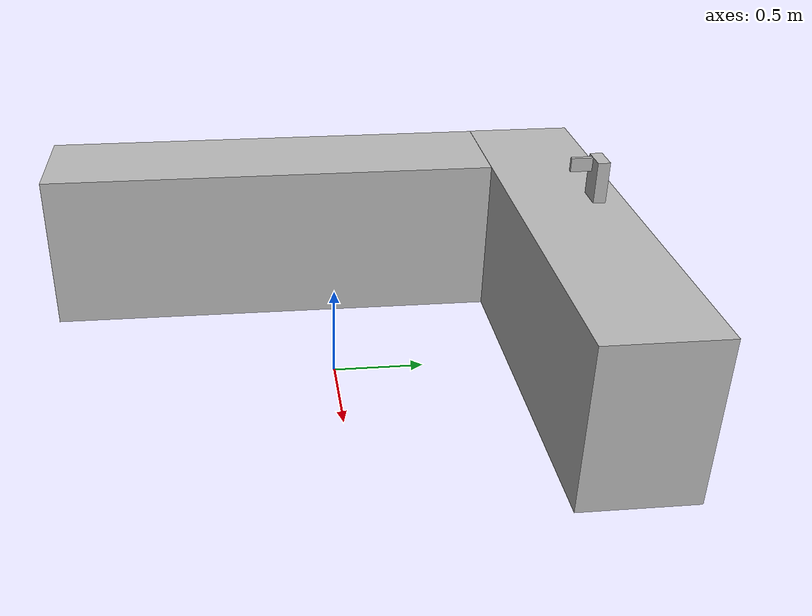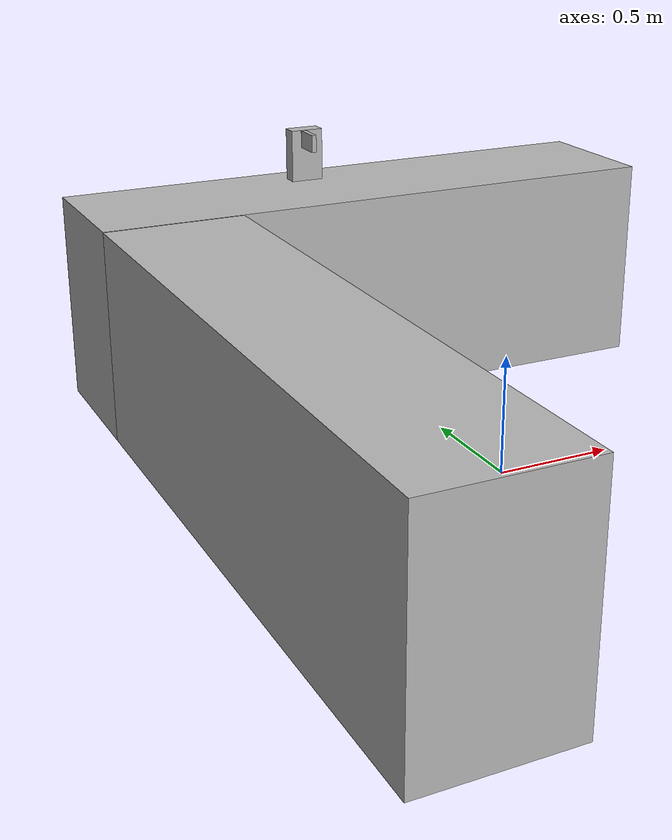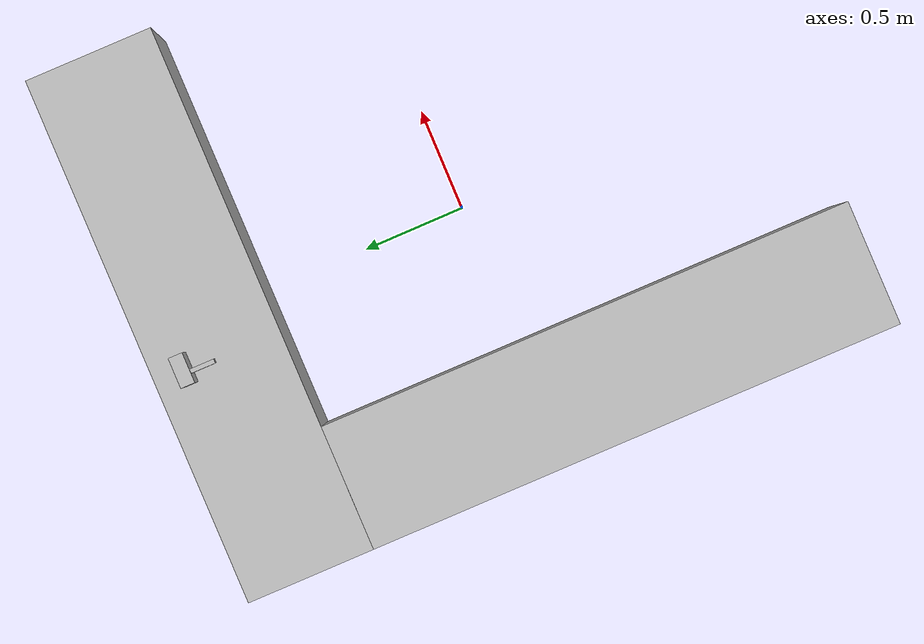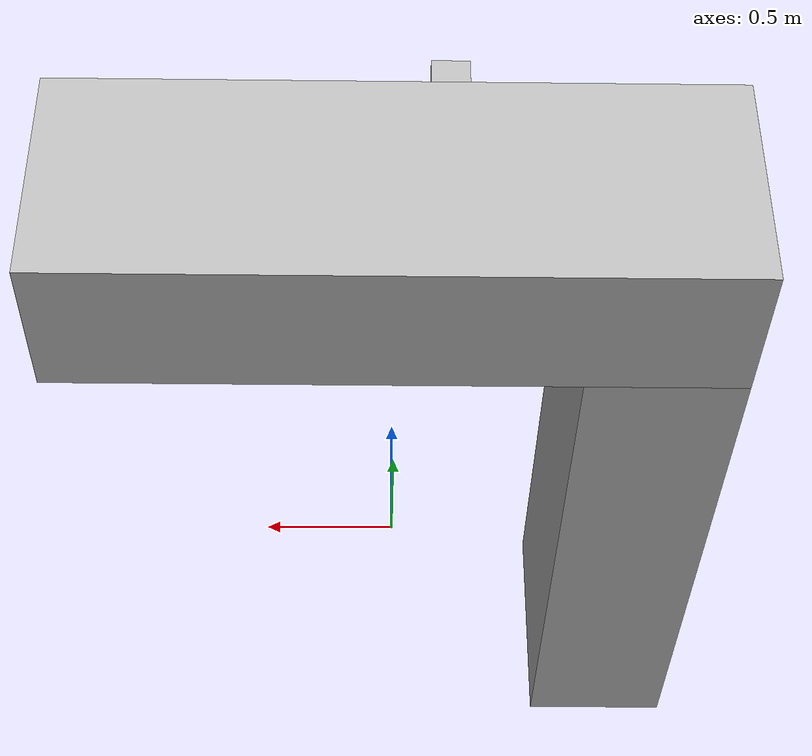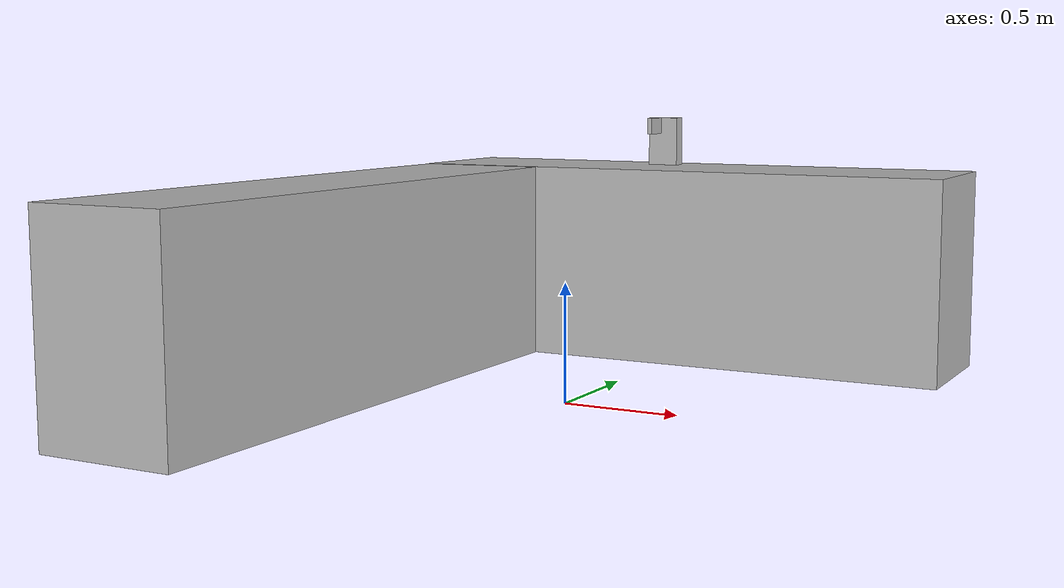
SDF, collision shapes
<?xml version="1.0" ?>
<sdf version="1.6">
  <model name="aws_robomaker_residential_KitchenCabinet_01">
    <link name="link">
      <inertial>
        <mass>1</mass>
      </inertial>
      <collision name="aws_kitchencabinet_01_collision_collider_box">
        <pose>-4.3e-05 1.302104 0.45085 0.0 -0.0 0.0</pose>
        <geometry>
          <box>
            <size>2.582186 0.619227 0.911266</size>
          </box>
        </geometry>
        <laser_retro>0</laser_retro>
        <max_contacts>10</max_contacts>
      </collision>
      <collision name="aws_kitchencabinet_01_collision_collider_box.001">
        <pose>-0.98762 -0.310566 0.449872 0.0 -0.0 0.0</pose>
        <geometry>
          <box>
            <size>0.607031 2.609778 0.90931</size>
          </box>
        </geometry>
        <laser_retro>0</laser_retro>
        <max_contacts>10</max_contacts>
      </collision>
      <collision name="aws_kitchencabinet_01_collision_collider_box.002">
        <pose>-0.202441 1.459795 1.0182 0.0 -0.0 0.0</pose>
        <geometry>
          <box>
            <size>0.146637 0.068513 0.23904</size>
          </box>
        </geometry>
        <laser_retro>0</laser_retro>
        <max_contacts>10</max_contacts>
      </collision>
      <collision name="aws_kitchencabinet_01_collision_collider_box.003">
        <pose>-0.221264 1.365189 1.099182 0.0 -0.0 0.0</pose>
        <geometry>
          <box>
            <size>0.020685 0.118187 0.077075</size>
          </box>
        </geometry>
        <laser_retro>0</laser_retro>
        <max_contacts>10</max_contacts>
      </collision>

      <visual name="visual">
        <geometry>
          <mesh>
            <uri>model://aws_robomaker_residential_KitchenCabinet_01/meshes/aws_KitchenCabinet_01_visual.DAE</uri>
          </mesh>
        </geometry>
        <meta> <layer> 1 </layer></meta>
      </visual>
    </link>

    <static>1</static>
  </model>
</sdf>
